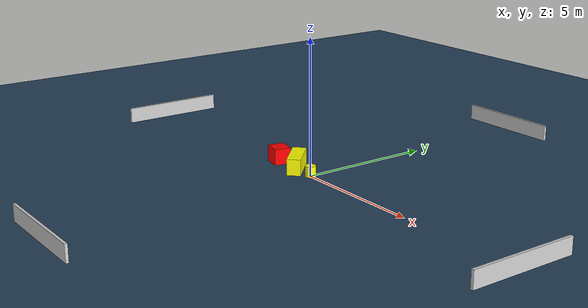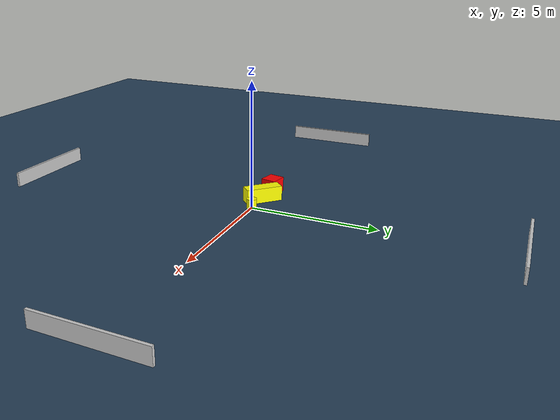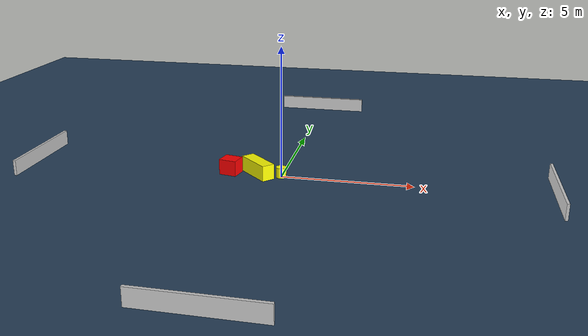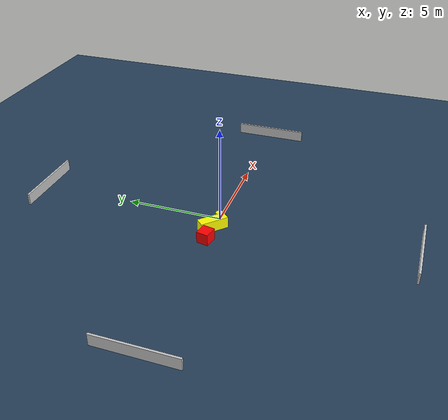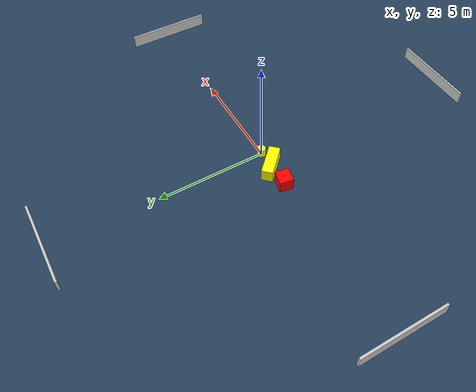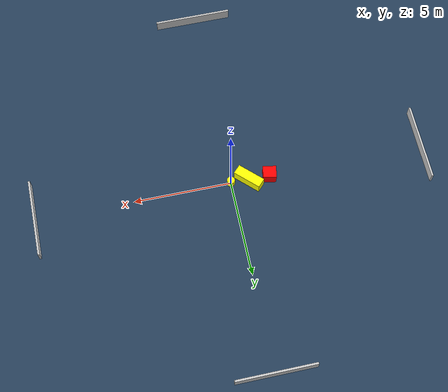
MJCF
<?xml version="1.0" ?>
<mujoco model="generated_environment">
  <option timestep="0.01" integrator="RK4" cone="elliptic"/>
  <default>
    <geom density="1"/>
  </default>
  <asset>
    <texture builtin="gradient" height="3072" name="skybox" rgb1="0.3 0.5 0.7" rgb2="0 0 0" type="skybox" width="512"/>
    <texture builtin="checker" height="300" name="groundplane" rgb1="0.2 0.3 0.4" rgb2="0.1 0.2 0.3" type="2d" width="300"/>
    <material name="groundplane" reflectance="0.2" texrepeat="5 5" texture="groundplane"/>
  </asset>
  <worldbody>
    <light dir="0 0 -1" directional="true" pos="0 0 1.5"/>
    <geom condim="3" friction="0.5 0.005 0.001" material="groundplane" name="floor" pos="0 0 0" size="0 0 0.05" type="plane"/>
    <body name="walls">
      <geom name="wall_1" condim="4" pos="-10.0 0.0 0.3" rgba="0.800000011920929 0.800000011920929 0.800000011920929 1.0" size="0.05 2.0 0.3" type="box"/>
      <geom name="wall_2" condim="4" pos="10.0 0.0 0.3" rgba="0.800000011920929 0.800000011920929 0.800000011920929 1.0" size="0.05 2.0 0.3" type="box"/>
      <geom name="wall_3" condim="4" pos="0.0 -10.0 0.3" rgba="0.800000011920929 0.800000011920929 0.800000011920929 1.0" size="2.0 0.05 0.3" type="box"/>
      <geom name="wall_4" condim="4" pos="0.0 10.0 0.3" rgba="0.800000011920929 0.800000011920929 0.800000011920929 1.0" size="2.0 0.05 0.3" type="box"/>
    </body>
    <body name="robot">
      <joint name="joint_x" type="slide" pos="0 0 0" axis="1 0 0"/>
      <joint name="joint_y" type="slide" pos="0 0 0" axis="0 1 0"/>
      <geom name="robot" type="cylinder" pos="0.0 0.0 0.2" size="0.2 0.2 0.0" mass="5.0" friction="1.0 0.005 0.0001" condim="4" rgba="1.0 1.0 0.0 1.0"/>
    </body>
    <body name="obstacle_1_movable">
      <geom name="obstacle_1_movable" condim="4" pos="-0.9225053934603715 0.05359665069855257 0.3" euler="0 0 225.9398684557624" friction="0.0 0.005 0.001" rgba="1.0 1.0 0.0 1.0" size="0.2549813612958151 0.7362070987506468 0.3" type="box" mass="0.1"/>
      <joint type="free"/>
    </body>
    <body name="obstacle_2_static">
      <geom name="obstacle_2_static" condim="4" pos="-1.9935685093357178 0.035019290397200836 0.3" euler="0 0 348.7723265322963" friction="0.0 0.005 0.001" rgba="1.0 0.0 0.0 1.0" size="0.34332229303443823 0.31157765451300135 0.3" type="box"/>
    </body>
  </worldbody>
  <actuator>
    <motor name="actuator_x" joint="joint_x" gear="1" ctrlrange="-1 1"/>
    <motor name="actuator_y" joint="joint_y" gear="1" ctrlrange="-1 1"/>
  </actuator>
</mujoco>
